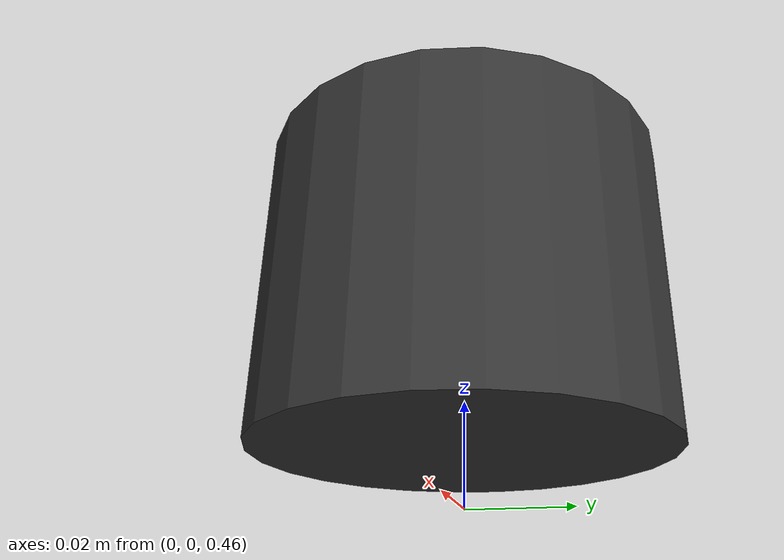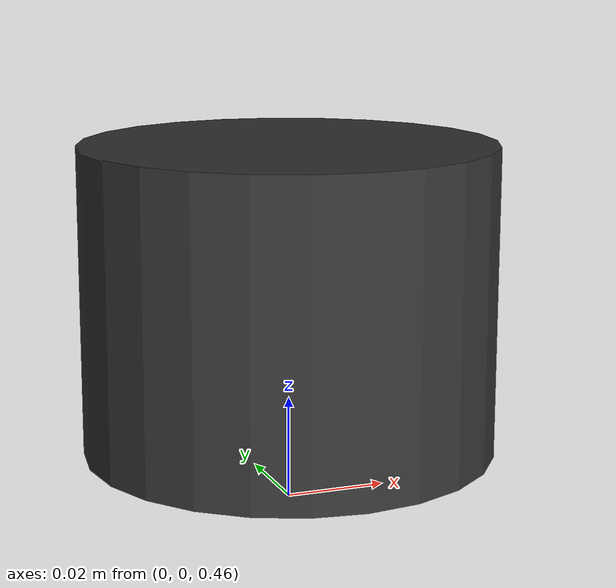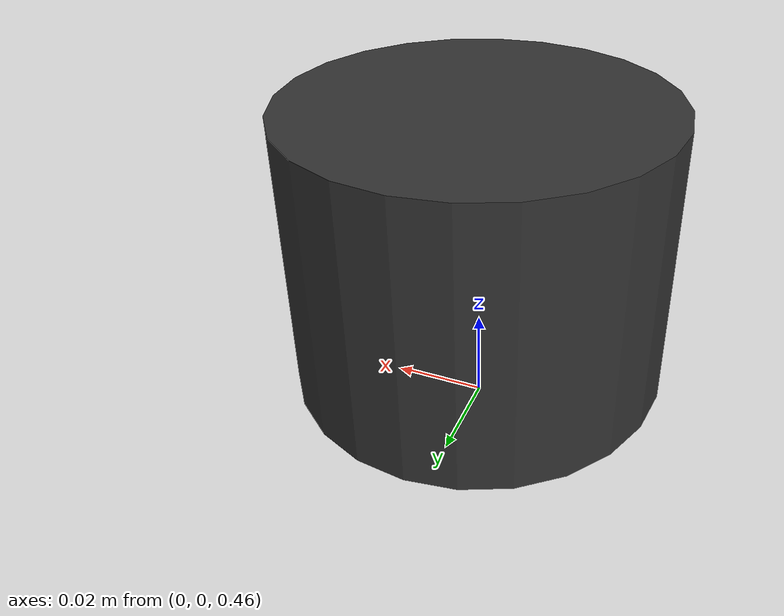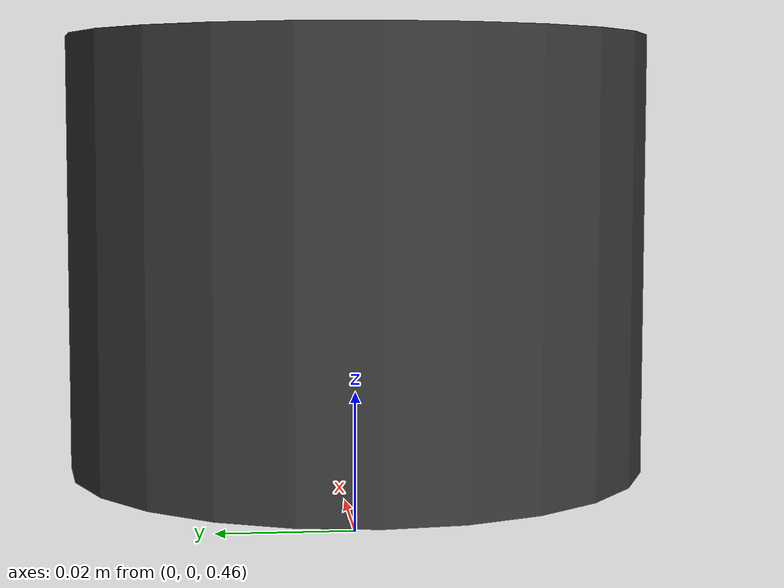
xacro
<?xml version="1.0"?>
<robot name="os1_sensor" xmlns:xacro="http://www.ros.org/wiki/xacro">

  <!-- Base link (루트 링크) -->
  <link name="base_link">
    <inertial>
      <mass value="1.0"/>
      <origin xyz="0 0 0" rpy="0 0 0"/>
      <inertia ixx="0.01" ixy="0.0" ixz="0.0" iyy="0.01" iyz="0.0" izz="0.01"/>
    </inertial>
  </link>

  <!-- 센서 링크와 base_link를 연결하는 고정 조인트 -->
  <joint name="os1_32_joint" type="fixed">
    <parent link="base_link"/>
    <child link="os1_32_link"/>
    <origin xyz="0 0 0.5" rpy="0 0 0"/>
  </joint>

  <!-- 센서 링크: LiDAR 센서를 포함 -->
  <link name="os1_32_link">
    <inertial>
      <mass value="0.5"/>
      <origin xyz="0 0 0" rpy="0 0 0"/>
      <inertia ixx="0.005" ixy="0.0" ixz="0.0" iyy="0.005" iyz="0.0" izz="0.005"/>
    </inertial>
    <visual>
      <geometry>
        <cylinder radius="0.04" length="0.06"/>
      </geometry>
      <material name="">
        <color rgba="0.2 0.2 0.2 1"/>
      </material>
    </visual>
    <collision>
      <geometry>
        <cylinder radius="0.04" length="0.06"/>
      </geometry>
    </collision>
  </link>

  <!-- Gazebo 센서 정의 (os1_32_link에 부착) -->
  <gazebo reference="os1_32_link">
    <sensor type="ray" name="os1_32_lidar">
      <pose>0 0 0 0 0 0</pose>
      <visualize>true</visualize>
      <update_rate>10</update_rate>

      <ray>
        <scan>
          <horizontal>
            <samples>1024</samples>
            <resolution>1</resolution>
            <min_angle>0</min_angle>
            <max_angle>6.28319</max_angle>
          </horizontal>
          <vertical>
            <samples>32</samples>
            <resolution>1</resolution>
            <min_angle>-0.3927</min_angle>
            <max_angle>0.3927</max_angle>
          </vertical>
        </scan>
        <range>
          <min>0.5</min>
          <max>120.0</max>
          <resolution>0.01</resolution>
        </range>
      </ray>

      <plugin name="gazebo_ros_laser_controller" filename="libgazebo_ros_ray_sensor.so">
        <ros>
          <namespace>/os1_32</namespace>
          <remapping>~/out:=points</remapping>
        </ros>
        <frame_name>os1_32_link</frame_name>
      </plugin>
    </sensor>
  </gazebo>

</robot>
